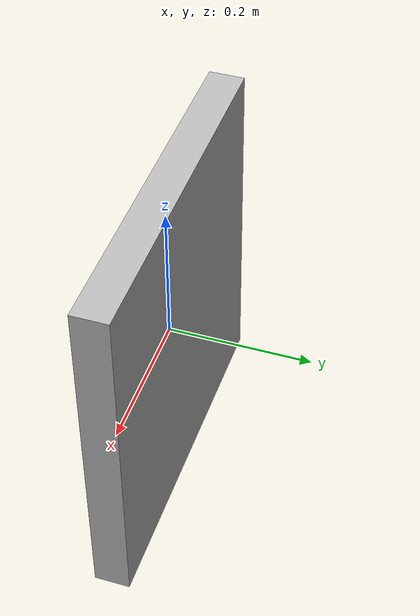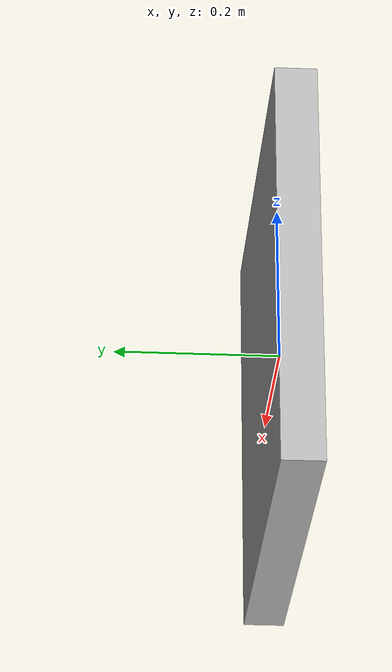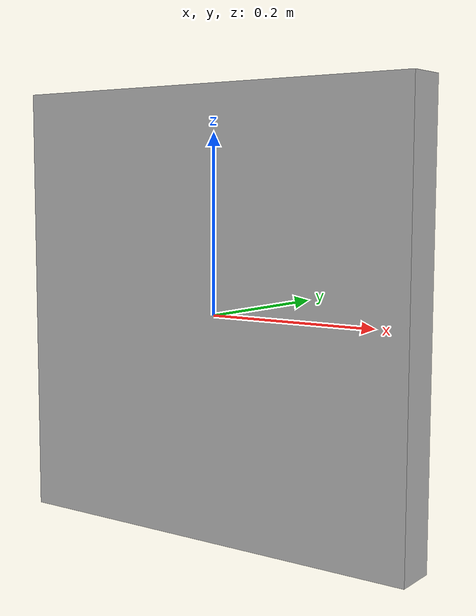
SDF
<?xml version="1.4"?>
<sdf version="1.4">
  <model name="sign_park">
    <static>true</static>
    <link name="link">
      <collision name="collision">
        <geometry>
          <box>
            <size>0.5 0.05 0.5</size>
          </box>
        </geometry>
      </collision>
      <visual name="visual">
        <geometry>
          <box>
            <size>0.5 0.05 0.5</size>
          </box>
        </geometry>
        <material>
          <script>
            <uri>model://sign_park/materials/scripts</uri>
            <uri>model://sign_park/materials/textures</uri>
            <name>SignPark/Diffuse</name>
          </script>
        </material>
      </visual>
    </link>
  </model>
</sdf>
